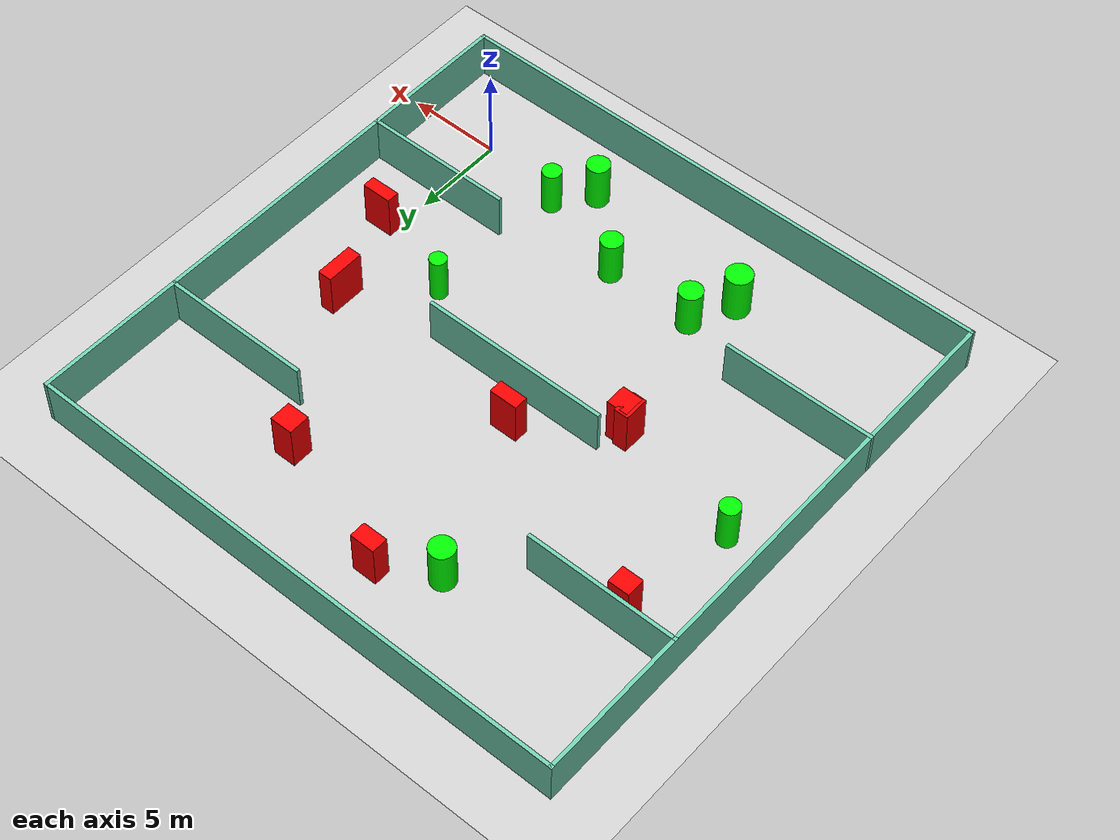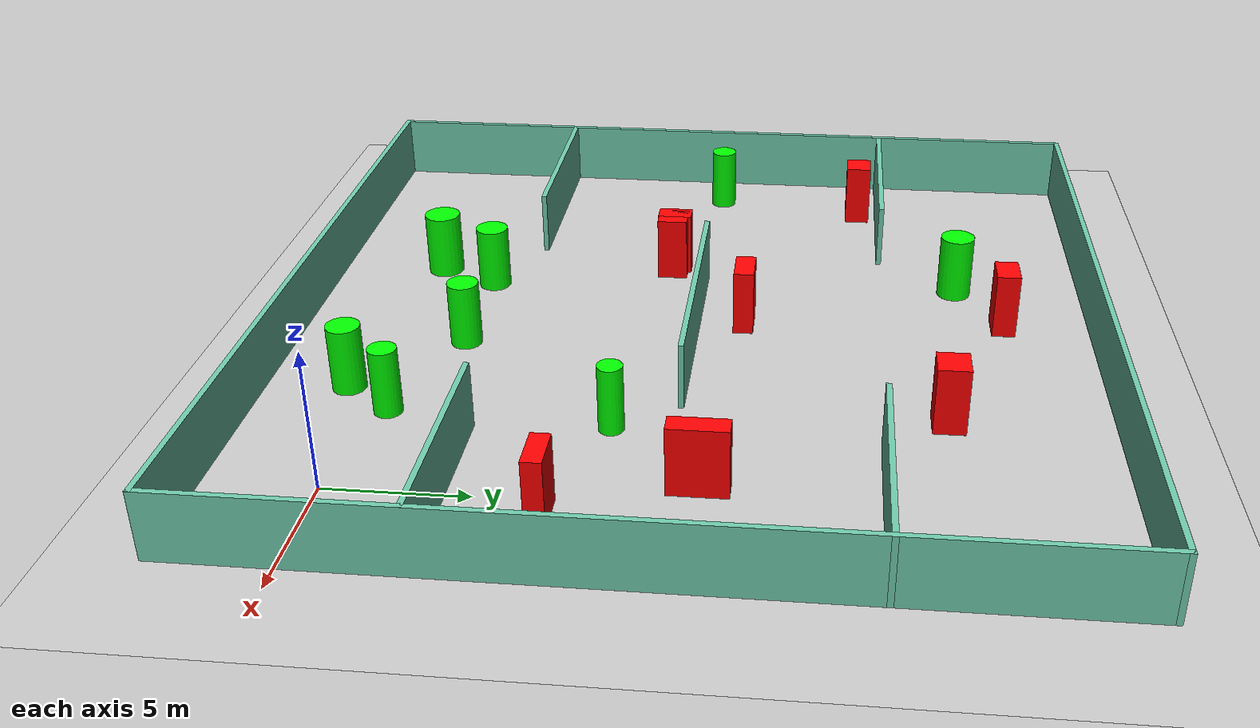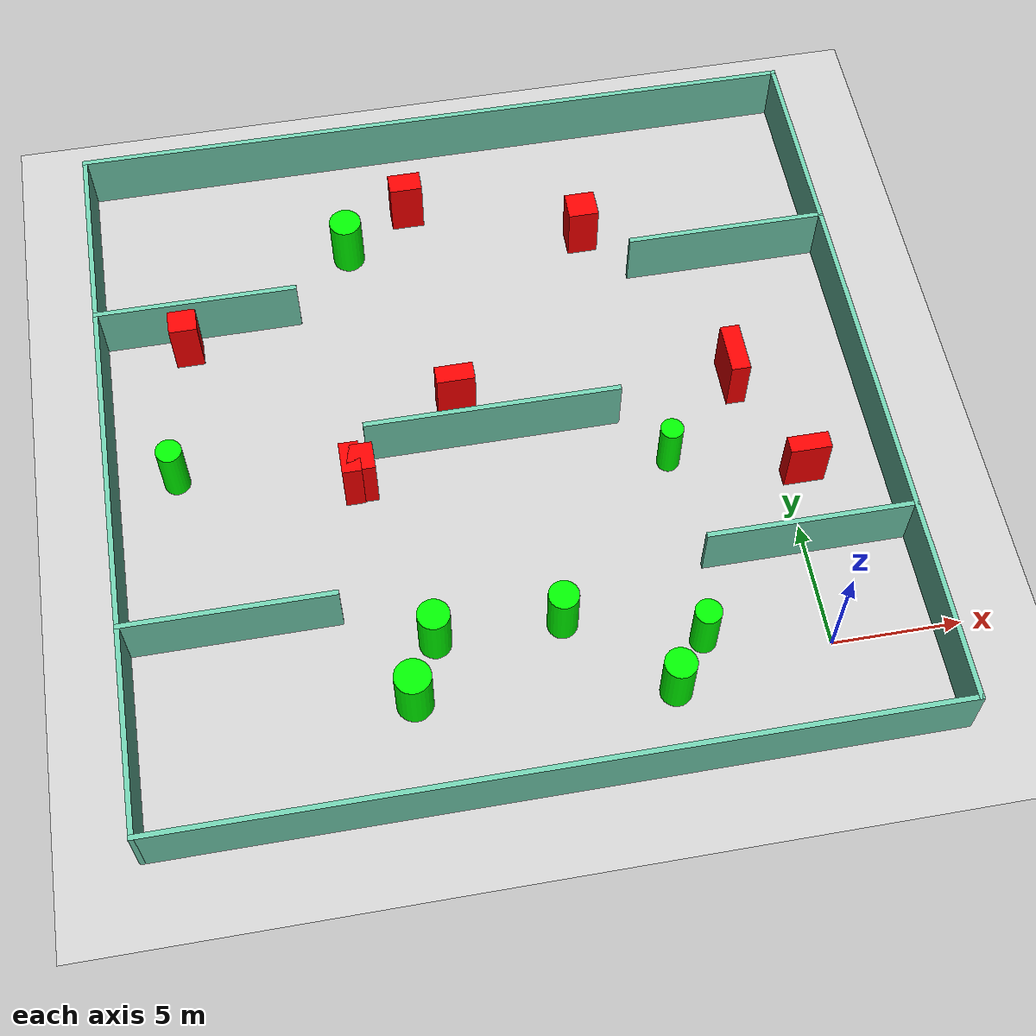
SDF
<sdf version="1.7">
 <world name="default">
  <light name="sun" type="directional">
   <pose>0 0 10 0 -0 0</pose>
   <diffuse>0.8 0.8 0.8 1</diffuse>
   <specular>0.2 0.2 0.2 1</specular>
   <attenuation>
    <range>1000</range>
    <constant>0.9</constant>
    <linear>0.01</linear>
    <quadratic>0.001</quadratic>
   </attenuation>
   <direction>-0.5 0.1 -0.9</direction>
   <spot><inner_angle>0</inner_angle><outer_angle>0</outer_angle><falloff>0</falloff></spot>
  </light>
  <model name="ground_plane">
   <static>1</static>
   <link name="link">
    <collision name="collision">
     <geometry><plane><normal>0 0 1</normal><size>100 100</size></plane></geometry>
     <surface>
      <contact><collide_bitmask>65535</collide_bitmask></contact>
      <friction><ode><mu>100</mu><mu2>50</mu2></ode></friction>
     </surface>
    </collision>
    <visual name="visual">
     <cast_shadows>0</cast_shadows>
     <geometry><plane><normal>0 0 1</normal><size>100 100</size></plane></geometry>
     <material>
      <script><uri>file://media/materials/scripts/gazebo.material</uri><name>Gazebo/Grey</name></script>
     </material>
    </visual>
   </link>
  </model>
  <gravity>0 0 -9.8</gravity>
  <magnetic_field>6e-06 2.3e-05 -4.2e-05</magnetic_field>
  <atmosphere type="adiabatic"/>
  <physics type="ode">
   <max_step_size>0.001</max_step_size>
   <real_time_factor>1</real_time_factor>
   <real_time_update_rate>1000</real_time_update_rate>
  </physics>
  <scene><ambient>0.4 0.4 0.4 1</ambient><background>0.7 0.7 0.7 1</background><shadows>1</shadows></scene>
  <spherical_coordinates>
   <surface_model>EARTH_WGS84</surface_model>
   <latitude_deg>0</latitude_deg>
   <longitude_deg>0</longitude_deg>
   <elevation>0</elevation>
   <heading_deg>0</heading_deg>
  </spherical_coordinates>
  <model name="my_base_walls">
   <link name="Wall_10">
    <collision name="Wall_10_Collision">
     <geometry><box><size>8.2 0.2 2.5</size></box></geometry>
     <pose>0 0 1.25 0 -0 0</pose>
    </collision>
    <visual name="Wall_10_Visual">
     <pose>0 0 1.25 0 -0 0</pose>
     <geometry><box><size>8.2 0.2 2.5</size></box></geometry>
     <material>
      <script><uri>file://media/materials/scripts/gazebo.material</uri><name>Gazebo/Grey</name></script>
      <ambient>0.435294 0.796078 0.67451 1</ambient>
     </material>
     <meta><layer>0</layer></meta>
    </visual>
    <pose>-11 -7 0 0 -0 0</pose>
   </link>
   <link name="Wall_12">
    <collision name="Wall_12_Collision">
     <geometry><box><size>8.2 0.2 2.5</size></box></geometry>
     <pose>0 0 1.25 0 -0 0</pose>
    </collision>
    <visual name="Wall_12_Visual">
     <pose>0 0 1.25 0 -0 0</pose>
     <geometry><box><size>8.2 0.2 2.5</size></box></geometry>
     <material>
      <script><uri>file://media/materials/scripts/gazebo.material</uri><name>Gazebo/Grey</name></script>
      <ambient>0.435294 0.796078 0.67451 1</ambient>
     </material>
     <meta><layer>0</layer></meta>
    </visual>
    <pose>-11 7 0 0 -0 0</pose>
   </link>
   <link name="Wall_14">
    <collision name="Wall_14_Collision">
     <geometry><box><size>8.2 0.2 2.5</size></box></geometry>
     <pose>0 0 1.25 0 -0 0</pose>
    </collision>
    <visual name="Wall_14_Visual">
     <pose>0 0 1.25 0 -0 0</pose>
     <geometry><box><size>8.2 0.2 2.5</size></box></geometry>
     <material>
      <script><uri>file://media/materials/scripts/gazebo.material</uri><name>Gazebo/Grey</name></script>
      <ambient>0.435294 0.796078 0.67451 1</ambient>
     </material>
     <meta><layer>0</layer></meta>
    </visual>
    <pose>11 7 0 0 -0 3.14159</pose>
   </link>
   <link name="Wall_16">
    <collision name="Wall_16_Collision">
     <geometry><box><size>10.2 0.2 2.5</size></box></geometry>
     <pose>0 0 1.25 0 -0 0</pose>
    </collision>
    <visual name="Wall_16_Visual">
     <pose>0 0 1.25 0 -0 0</pose>
     <geometry><box><size>10.2 0.2 2.5</size></box></geometry>
     <material>
      <script><uri>file://media/materials/scripts/gazebo.material</uri><name>Gazebo/Grey</name></script>
      <ambient>0.435294 0.796078 0.67451 1</ambient>
     </material>
     <meta><layer>0</layer></meta>
    </visual>
    <pose>0 0 0 0 -0 3.14159</pose>
   </link>
   <link name="Wall_2">
    <collision name="Wall_2_Collision">
     <geometry><box><size>30.2 0.2 2.5</size></box></geometry>
     <pose>0 0 1.25 0 -0 0</pose>
    </collision>
    <visual name="Wall_2_Visual">
     <pose>0 0 1.25 0 -0 0</pose>
     <geometry><box><size>30.2 0.2 2.5</size></box></geometry>
     <material>
      <script><uri>file://media/materials/scripts/gazebo.material</uri><name>Gazebo/Grey</name></script>
      <ambient>0.435294 0.796078 0.67451 1</ambient>
     </material>
     <meta><layer>0</layer></meta>
    </visual>
    <pose>0 -15 0 0 -0 3.14159</pose>
   </link>
   <link name="Wall_3">
    <collision name="Wall_3_Collision">
     <geometry><box><size>30.2 0.2 2.5</size></box></geometry>
     <pose>0 0 1.25 0 -0 0</pose>
    </collision>
    <visual name="Wall_3_Visual">
     <pose>0 0 1.25 0 -0 0</pose>
     <geometry><box><size>30.2 0.2 2.5</size></box></geometry>
     <material>
      <script><uri>file://media/materials/scripts/gazebo.material</uri><name>Gazebo/Grey</name></script>
      <ambient>0.435294 0.796078 0.67451 1</ambient>
     </material>
     <meta><layer>0</layer></meta>
    </visual>
    <pose>-15 0 0 0 -0 1.5708</pose>
   </link>
   <link name="Wall_4">
    <collision name="Wall_4_Collision">
     <geometry><box><size>30.2 0.2 2.5</size></box></geometry>
     <pose>0 0 1.25 0 -0 0</pose>
    </collision>
    <visual name="Wall_4_Visual">
     <pose>0 0 1.25 0 -0 0</pose>
     <geometry><box><size>30.2 0.2 2.5</size></box></geometry>
     <material>
      <script><uri>file://media/materials/scripts/gazebo.material</uri><name>Gazebo/Grey</name></script>
      <ambient>0.435294 0.796078 0.67451 1</ambient>
     </material>
     <meta><layer>0</layer></meta>
    </visual>
    <pose>0 15 0 0 -0 0</pose>
   </link>
   <link name="Wall_6">
    <collision name="Wall_6_Collision">
     <geometry><box><size>30.2 0.2 2.5</size></box></geometry>
     <pose>0 0 1.25 0 -0 0</pose>
    </collision>
    <visual name="Wall_6_Visual">
     <pose>0 0 1.25 0 -0 0</pose>
     <geometry><box><size>30.2 0.2 2.5</size></box></geometry>
     <material>
      <script><uri>file://media/materials/scripts/gazebo.material</uri><name>Gazebo/Grey</name></script>
      <ambient>0.435294 0.796078 0.67451 1</ambient>
     </material>
     <meta><layer>0</layer></meta>
    </visual>
    <pose>15 0 0 0 -0 1.5708</pose>
   </link>
   <link name="Wall_8">
    <collision name="Wall_8_Collision">
     <geometry><box><size>8.2 0.2 2.5</size></box></geometry>
     <pose>0 0 1.25 0 -0 0</pose>
    </collision>
    <visual name="Wall_8_Visual">
     <pose>0 0 1.25 0 -0 0</pose>
     <geometry><box><size>8.2 0.2 2.5</size></box></geometry>
     <material>
      <script><uri>file://media/materials/scripts/gazebo.material</uri><name>Gazebo/Grey</name></script>
      <ambient>0.435294 0.796078 0.67451 1</ambient>
     </material>
     <meta><layer>0</layer></meta>
    </visual>
    <pose>11 -7 0 0 -0 3.14159</pose>
   </link>
   <static>1</static>
   <pose>-11 11 0 0 -0 0</pose>
  </model>
  <model name="cylinder1">
   <static>1</static>
   <link name="link">
    <inertial>
     <mass>1</mass>
     <inertia><ixx>0.5</ixx><ixy>0</ixy><ixz>0</ixz><iyy>0.5</iyy><iyz>0</iyz><izz>1</izz></inertia>
    </inertial>
    <collision name="collision">
     <geometry><cylinder><radius>0.5858284288087834</radius><length>2.5</length></cylinder></geometry>
    </collision>
    <visual name="visual">
     <geometry><cylinder><radius>0.5858284288087834</radius><length>2.5</length></cylinder></geometry>
     <material>
      <ambient>0 1 0 1</ambient>
      <diffuse>0 1 0 1</diffuse>
      <specular>0.1 0.1 0.1 1</specular>
      <emissive>0 0 0 0</emissive>
     </material>
    </visual>
   </link>
   <pose>-9.811960677889473 2.481572282450477 1.25 0 0 0</pose>
  </model>
  <model name="cylinder2">
   <static>1</static>
   <link name="link">
    <inertial>
     <mass>1</mass>
     <inertia><ixx>0.5</ixx><ixy>0</ixy><ixz>0</ixz><iyy>0.5</iyy><iyz>0</iyz><izz>1</izz></inertia>
    </inertial>
    <collision name="collision">
     <geometry><cylinder><radius>0.6519388436524085</radius><length>2.5</length></cylinder></geometry>
    </collision>
    <visual name="visual">
     <geometry><cylinder><radius>0.6519388436524085</radius><length>2.5</length></cylinder></geometry>
     <material>
      <ambient>0 1 0 1</ambient>
      <diffuse>0 1 0 1</diffuse>
      <specular>0.1 0.1 0.1 1</specular>
      <emissive>0 0 0 0</emissive>
     </material>
    </visual>
   </link>
   <pose>-15.53699848443815 20.94307926175449 1.25 0 0 0</pose>
  </model>
  <model name="cylinder3">
   <static>1</static>
   <link name="link">
    <inertial>
     <mass>1</mass>
     <inertia><ixx>0.5</ixx><ixy>0</ixy><ixz>0</ixz><iyy>0.5</iyy><iyz>0</iyz><izz>1</izz></inertia>
    </inertial>
    <collision name="collision">
     <geometry><cylinder><radius>0.4518504635033256</radius><length>2.5</length></cylinder></geometry>
    </collision>
    <visual name="visual">
     <geometry><cylinder><radius>0.4518504635033256</radius><length>2.5</length></cylinder></geometry>
     <material>
      <ambient>0 1 0 1</ambient>
      <diffuse>0 1 0 1</diffuse>
      <specular>0.1 0.1 0.1 1</specular>
      <emissive>0 0 0 0</emissive>
     </material>
    </visual>
   </link>
   <pose>-4.353100879860193 8.782004861493565 1.25 0 0 0</pose>
  </model>
  <model name="cylinder4">
   <static>1</static>
   <link name="link">
    <inertial>
     <mass>1</mass>
     <inertia><ixx>0.5</ixx><ixy>0</ixy><ixz>0</ixz><iyy>0.5</iyy><iyz>0</iyz><izz>1</izz></inertia>
    </inertial>
    <collision name="collision">
     <geometry><cylinder><radius>0.5134351103824277</radius><length>2.5</length></cylinder></geometry>
    </collision>
    <visual name="visual">
     <geometry><cylinder><radius>0.5134351103824277</radius><length>2.5</length></cylinder></geometry>
     <material>
      <ambient>0 1 0 1</ambient>
      <diffuse>0 1 0 1</diffuse>
      <specular>0.1 0.1 0.1 1</specular>
      <emissive>0 0 0 0</emissive>
     </material>
    </visual>
   </link>
   <pose>-23.592328699560447 11.107319603310962 1.25 0 0 0</pose>
  </model>
  <model name="cylinder5">
   <static>1</static>
   <link name="link">
    <inertial>
     <mass>1</mass>
     <inertia><ixx>0.5</ixx><ixy>0</ixy><ixz>0</ixz><iyy>0.5</iyy><iyz>0</iyz><izz>1</izz></inertia>
    </inertial>
    <collision name="collision">
     <geometry><cylinder><radius>0.510400056081787</radius><length>2.5</length></cylinder></geometry>
    </collision>
    <visual name="visual">
     <geometry><cylinder><radius>0.510400056081787</radius><length>2.5</length></cylinder></geometry>
     <material>
      <ambient>0 1 0 1</ambient>
      <diffuse>0 1 0 1</diffuse>
      <specular>0.1 0.1 0.1 1</specular>
      <emissive>0 0 0 0</emissive>
     </material>
    </visual>
   </link>
   <pose>-4.752447926327351 0.9163623078243295 1.25 0 0 0</pose>
  </model>
  <model name="cylinder6">
   <static>1</static>
   <link name="link">
    <inertial>
     <mass>1</mass>
     <inertia><ixx>0.5</ixx><ixy>0</ixy><ixz>0</ixz><iyy>0.5</iyy><iyz>0</iyz><izz>1</izz></inertia>
    </inertial>
    <collision name="collision">
     <geometry><cylinder><radius>0.6219134809561526</radius><length>2.5</length></cylinder></geometry>
    </collision>
    <visual name="visual">
     <geometry><cylinder><radius>0.6219134809561526</radius><length>2.5</length></cylinder></geometry>
     <material>
      <ambient>0 1 0 1</ambient>
      <diffuse>0 1 0 1</diffuse>
      <specular>0.1 0.1 0.1 1</specular>
      <emissive>0 0 0 0</emissive>
     </material>
    </visual>
   </link>
   <pose>-14.632453638937573 2.5158551859903717 1.25 0 0 0</pose>
  </model>
  <model name="cylinder7">
   <static>1</static>
   <link name="link">
    <inertial>
     <mass>1</mass>
     <inertia><ixx>0.5</ixx><ixy>0</ixy><ixz>0</ixz><iyy>0.5</iyy><iyz>0</iyz><izz>1</izz></inertia>
    </inertial>
    <collision name="collision">
     <geometry><cylinder><radius>0.6129783890114244</radius><length>2.5</length></cylinder></geometry>
    </collision>
    <visual name="visual">
     <geometry><cylinder><radius>0.6129783890114244</radius><length>2.5</length></cylinder></geometry>
     <material>
      <ambient>0 1 0 1</ambient>
      <diffuse>0 1 0 1</diffuse>
      <specular>0.1 0.1 0.1 1</specular>
      <emissive>0 0 0 0</emissive>
     </material>
    </visual>
   </link>
   <pose>-6.189513558121206 -0.9067931248404335 1.25 0 0 0</pose>
  </model>
  <model name="cylinder8">
   <static>1</static>
   <link name="link">
    <inertial>
     <mass>1</mass>
     <inertia><ixx>0.5</ixx><ixy>0</ixy><ixz>0</ixz><iyy>0.5</iyy><iyz>0</iyz><izz>1</izz></inertia>
    </inertial>
    <collision name="collision">
     <geometry><cylinder><radius>0.6994834753918049</radius><length>2.5</length></cylinder></geometry>
    </collision>
    <visual name="visual">
     <geometry><cylinder><radius>0.6994834753918049</radius><length>2.5</length></cylinder></geometry>
     <material>
      <ambient>0 1 0 1</ambient>
      <diffuse>0 1 0 1</diffuse>
      <specular>0.1 0.1 0.1 1</specular>
      <emissive>0 0 0 0</emissive>
     </material>
    </visual>
   </link>
   <pose>-15.73248886657922 0.22775782587456073 1.25 0 0 0</pose>
  </model>
  <model name="box1">
   <static>1</static>
   <link name="link">
    <inertial>
     <mass>1</mass>
     <inertia><ixx>0.083</ixx><ixy>0</ixy><ixz>0</ixz><iyy>0.083</iyy><iyz>0</iyz><izz>0.083</izz></inertia>
    </inertial>
    <collision name="collision">
     <geometry><box><size>0.7682215069040064 2.062225070918899 2.5</size></box></geometry>
    </collision>
    <visual name="visual">
     <geometry><box><size>0.7682215069040064 2.062225070918899 2.5</size></box></geometry>
     <material>
      <ambient>1 0 0 1</ambient>
      <diffuse>1 0 0 1</diffuse>
      <specular>0.1 0.1 0.1 1</specular>
      <emissive>0 0 0 0</emissive>
     </material>
    </visual>
    <sensor name="my_contact" type="contact">
     <contact><collision>box_collision</collision><topic>__default_topic__</topic></contact>
    </sensor>
   </link>
   <pose>-1.0552198307851874 12.058657916966538 1.25 0 0 0</pose>
  </model>
  <model name="box2">
   <static>1</static>
   <link name="link">
    <inertial>
     <mass>1</mass>
     <inertia><ixx>0.083</ixx><ixy>0</ixy><ixz>0</ixz><iyy>0.083</iyy><iyz>0</iyz><izz>0.083</izz></inertia>
    </inertial>
    <collision name="collision">
     <geometry><box><size>1.6265488105500663 0.6830034740761182 2.5</size></box></geometry>
    </collision>
    <visual name="visual">
     <geometry><box><size>1.6265488105500663 0.6830034740761182 2.5</size></box></geometry>
     <material>
      <ambient>1 0 0 1</ambient>
      <diffuse>1 0 0 1</diffuse>
      <specular>0.1 0.1 0.1 1</specular>
      <emissive>0 0 0 0</emissive>
     </material>
    </visual>
    <sensor name="my_contact" type="contact">
     <contact><collision>box_collision</collision><topic>__default_topic__</topic></contact>
    </sensor>
   </link>
   <pose>0.7170930263004784 7.282728335244087 1.25 0 0 0</pose>
  </model>
  <model name="box3">
   <static>1</static>
   <link name="link">
    <inertial>
     <mass>1</mass>
     <inertia><ixx>0.083</ixx><ixy>0</ixy><ixz>0</ixz><iyy>0.083</iyy><iyz>0</iyz><izz>0.083</izz></inertia>
    </inertial>
    <collision name="collision">
     <geometry><box><size>1.13213225086088 1.1621199828178717 2.5</size></box></geometry>
    </collision>
    <visual name="visual">
     <geometry><box><size>1.13213225086088 1.1621199828178717 2.5</size></box></geometry>
     <material>
      <ambient>1 0 0 1</ambient>
      <diffuse>1 0 0 1</diffuse>
      <specular>0.1 0.1 0.1 1</specular>
      <emissive>0 0 0 0</emissive>
     </material>
    </visual>
    <sensor name="my_contact" type="contact">
     <contact><collision>box_collision</collision><topic>__default_topic__</topic></contact>
    </sensor>
   </link>
   <pose>-16.429821631342406 9.600514162051336 1.25 0 0 0</pose>
  </model>
  <model name="box4">
   <static>1</static>
   <link name="link">
    <inertial>
     <mass>1</mass>
     <inertia><ixx>0.083</ixx><ixy>0</ixy><ixz>0</ixz><iyy>0.083</iyy><iyz>0</iyz><izz>0.083</izz></inertia>
    </inertial>
    <collision name="collision">
     <geometry><box><size>0.7636203503806218 1.334521745368457 2.5</size></box></geometry>
    </collision>
    <visual name="visual">
     <geometry><box><size>0.7636203503806218 1.334521745368457 2.5</size></box></geometry>
     <material>
      <ambient>1 0 0 1</ambient>
      <diffuse>1 0 0 1</diffuse>
      <specular>0.1 0.1 0.1 1</specular>
      <emissive>0 0 0 0</emissive>
     </material>
    </visual>
    <sensor name="my_contact" type="contact">
     <contact><collision>box_collision</collision><topic>__default_topic__</topic></contact>
    </sensor>
   </link>
   <pose>-16.777879357509015 9.643950320703272 1.25 0 0 0</pose>
  </model>
  <model name="box5">
   <static>1</static>
   <link name="link">
    <inertial>
     <mass>1</mass>
     <inertia><ixx>0.083</ixx><ixy>0</ixy><ixz>0</ixz><iyy>0.083</iyy><iyz>0</iyz><izz>0.083</izz></inertia>
    </inertial>
    <collision name="collision">
     <geometry><box><size>1.2346031165737765 1.1517529993194187 2.5</size></box></geometry>
    </collision>
    <visual name="visual">
     <geometry><box><size>1.2346031165737765 1.1517529993194187 2.5</size></box></geometry>
     <material>
      <ambient>1 0 0 1</ambient>
      <diffuse>1 0 0 1</diffuse>
      <specular>0.1 0.1 0.1 1</specular>
      <emissive>0 0 0 0</emissive>
     </material>
    </visual>
    <sensor name="my_contact" type="contact">
     <contact><collision>box_collision</collision><topic>__default_topic__</topic></contact>
    </sensor>
   </link>
   <pose>-5.69041319287404 20.197275354707457 1.25 0 0 0</pose>
  </model>
  <model name="box6">
   <static>1</static>
   <link name="link">
    <inertial>
     <mass>1</mass>
     <inertia><ixx>0.083</ixx><ixy>0</ixy><ixz>0</ixz><iyy>0.083</iyy><iyz>0</iyz><izz>0.083</izz></inertia>
    </inertial>
    <collision name="collision">
     <geometry><box><size>1.537799268389416 0.7586576321754643 2.5</size></box></geometry>
    </collision>
    <visual name="visual">
     <geometry><box><size>1.537799268389416 0.7586576321754643 2.5</size></box></geometry>
     <material>
      <ambient>1 0 0 1</ambient>
      <diffuse>1 0 0 1</diffuse>
      <specular>0.1 0.1 0.1 1</specular>
      <emissive>0 0 0 0</emissive>
     </material>
    </visual>
    <sensor name="my_contact" type="contact">
     <contact><collision>box_collision</collision><topic>__default_topic__</topic></contact>
    </sensor>
   </link>
   <pose>-12.227511469109091 12.776231052252891 1.25 0 0 0</pose>
  </model>
  <model name="box7">
   <static>1</static>
   <link name="link">
    <inertial>
     <mass>1</mass>
     <inertia><ixx>0.083</ixx><ixy>0</ixy><ixz>0</ixz><iyy>0.083</iyy><iyz>0</iyz><izz>0.083</izz></inertia>
    </inertial>
    <collision name="collision">
     <geometry><box><size>1.3404203258645124 0.8784813092282835 2.5</size></box></geometry>
    </collision>
    <visual name="visual">
     <geometry><box><size>1.3404203258645124 0.8784813092282835 2.5</size></box></geometry>
     <material>
      <ambient>1 0 0 1</ambient>
      <diffuse>1 0 0 1</diffuse>
      <specular>0.1 0.1 0.1 1</specular>
      <emissive>0 0 0 0</emissive>
     </material>
    </visual>
    <sensor name="my_contact" type="contact">
     <contact><collision>box_collision</collision><topic>__default_topic__</topic></contact>
    </sensor>
   </link>
   <pose>-12.80417002206192 22.632413760552673 1.25 0 0 0</pose>
  </model>
  <model name="box8">
   <static>1</static>
   <link name="link">
    <inertial>
     <mass>1</mass>
     <inertia><ixx>0.083</ixx><ixy>0</ixy><ixz>0</ixz><iyy>0.083</iyy><iyz>0</iyz><izz>0.083</izz></inertia>
    </inertial>
    <collision name="collision">
     <geometry><box><size>1.1311151278632559 1.0079580590087276 2.5</size></box></geometry>
    </collision>
    <visual name="visual">
     <geometry><box><size>1.1311151278632559 1.0079580590087276 2.5</size></box></geometry>
     <material>
      <ambient>1 0 0 1</ambient>
      <diffuse>1 0 0 1</diffuse>
      <specular>0.1 0.1 0.1 1</specular>
      <emissive>0 0 0 0</emissive>
     </material>
    </visual>
    <sensor name="my_contact" type="contact">
     <contact><collision>box_collision</collision><topic>__default_topic__</topic></contact>
    </sensor>
   </link>
   <pose>-22.606196856229758 17.10356962789819 1.25 0 0 0</pose>
  </model>
 </world>
</sdf>
